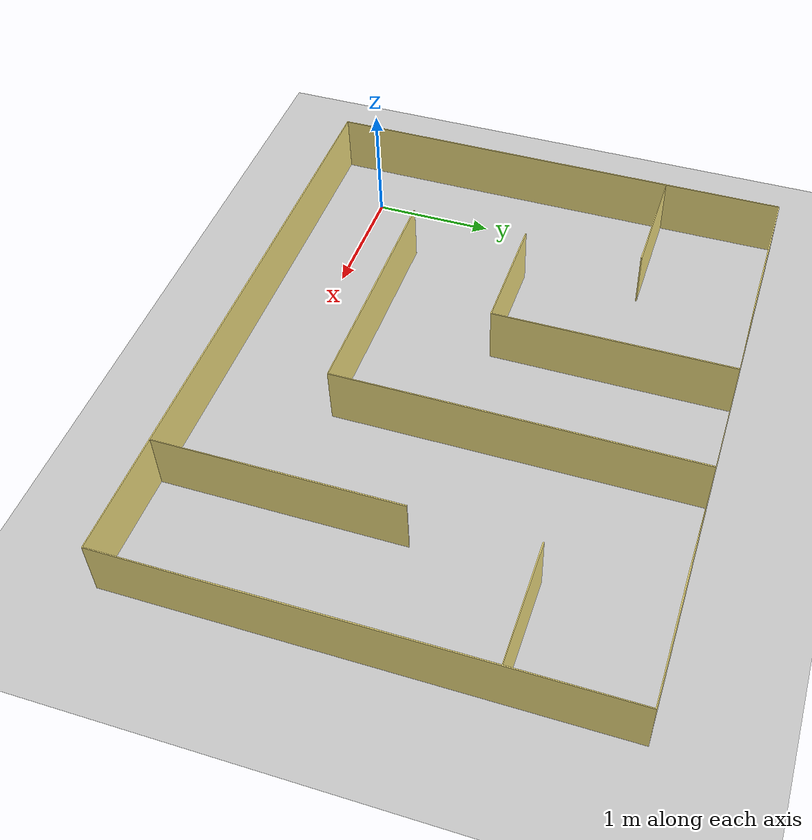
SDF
<sdf version='1.10'>
  <world name='empty'>
    <physics name='1ms' type='ignored'>
      <max_step_size>0.001</max_step_size>
      <real_time_factor>1</real_time_factor>
      <real_time_update_rate>1000</real_time_update_rate>
    </physics>
    <plugin name='gz::sim::systems::Physics' filename='gz-sim-physics-system'/>
    <plugin name='gz::sim::systems::UserCommands' filename='gz-sim-user-commands-system'/>
    <plugin name='gz::sim::systems::SceneBroadcaster' filename='gz-sim-scene-broadcaster-system'/>
    <plugin name='gz::sim::systems::Contact' filename='gz-sim-contact-system'/>
    <gravity>0 0 -9.8000000000000007</gravity>
    <magnetic_field>5.5644999999999998e-06 2.2875799999999999e-05 -4.2388400000000002e-05</magnetic_field>
    <atmosphere type='adiabatic'/>
    <scene>
      <ambient>0.400000006 0.400000006 0.400000006 1</ambient>
      <background>0.699999988 0.699999988 0.699999988 1</background>
      <shadows>true</shadows>
    </scene>
    <model name='ground_plane'>
      <static>true</static>
      <link name='link'>
        <collision name='collision'>
          <geometry>
            <plane>
              <normal>0 0 1</normal>
              <size>100 100</size>
            </plane>
          </geometry>
          <surface>
            <friction>
              <ode/>
            </friction>
            <bounce/>
            <contact/>
          </surface>
        </collision>
        <visual name='visual'>
          <geometry>
            <plane>
              <normal>0 0 1</normal>
              <size>100 100</size>
            </plane>
          </geometry>
          <material>
            <ambient>0.800000012 0.800000012 0.800000012 1</ambient>
            <diffuse>0.800000012 0.800000012 0.800000012 1</diffuse>
            <specular>0.800000012 0.800000012 0.800000012 1</specular>
          </material>
        </visual>
        <pose>0 0 0 0 0 0</pose>
        <inertial>
          <pose>0 0 0 0 0 0</pose>
          <mass>1</mass>
          <inertia>
            <ixx>1</ixx>
            <ixy>0</ixy>
            <ixz>0</ixz>
            <iyy>1</iyy>
            <iyz>0</iyz>
            <izz>1</izz>
          </inertia>
        </inertial>
        <enable_wind>false</enable_wind>
      </link>
      <pose>0 0 0 0 0 0</pose>
      <self_collide>false</self_collide>
    </model>
    <model name='Maze1'>
      <link name='link'>
        <visual name='visual'>
          <geometry>
            <mesh>
              <uri>file://maze_4/Maze4.obj</uri>
            </mesh>
          </geometry>
          <material>
            <diffuse>0.94 0.87 0.5 1.0</diffuse>
            <ambient>0.5 0.0 0.0 1.0</ambient>
            <specular>0.0 0.0 0.0 0.0</specular>
            <emissive>0.0 0.0 0.0 1.0</emissive>
          </material>
        </visual>
        <collision name='collision'>
          <geometry>
            <mesh>
              <uri>file://maze_4/Maze4.obj</uri>
            </mesh>
          </geometry>
        </collision>
        <pose>0 0 0 0 0 0</pose>
        <inertial>
          <pose>0 0 0 0 0 0</pose>
          <mass>1</mass>
          <inertia>
            <ixx>1</ixx>
            <ixy>0</ixy>
            <ixz>0</ixz>
            <iyy>1</iyy>
            <iyz>0</iyz>
            <izz>1</izz>
          </inertia>
        </inertial>
        <enable_wind>false</enable_wind>
      </link>
      <pose>-0.5 -0.5 0 1.571 0 -1.571</pose>
      <static>true</static>
      <self_collide>false</self_collide>
    </model>
    <light name='sun' type='directional'>
      <pose>0 0 10 0 0 0</pose>
      <cast_shadows>true</cast_shadows>
      <intensity>1</intensity>
      <direction>-0.5 0.10000000000000001 -0.90000000000000002</direction>
      <diffuse>0.800000012 0.800000012 0.800000012 1</diffuse>
      <specular>0.200000003 0.200000003 0.200000003 1</specular>
      <attenuation>
        <range>1000</range>
        <linear>0.0099999997764825821</linear>
        <constant>0.89999997615814209</constant>
        <quadratic>0.0010000000474974513</quadratic>
      </attenuation>
      <spot>
        <inner_angle>0</inner_angle>
        <outer_angle>0</outer_angle>
        <falloff>0</falloff>
      </spot>
    </light>
    <plugin
      filename="gz-sim-sensors-system"
      name="gz::sim::systems::Sensors">
      <render_engine>ogre2</render_engine>
    </plugin>
  </world>
</sdf>
